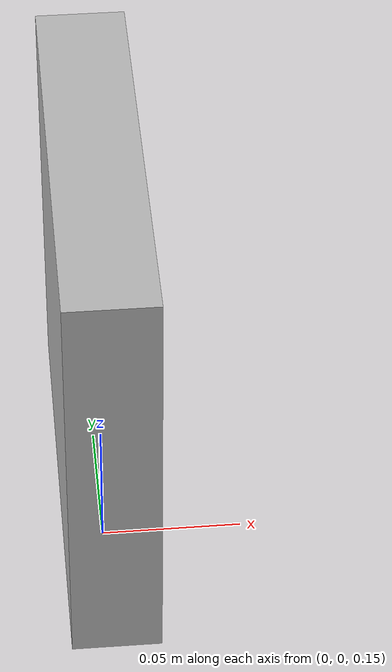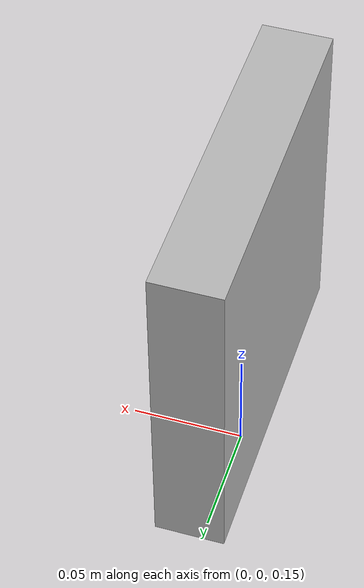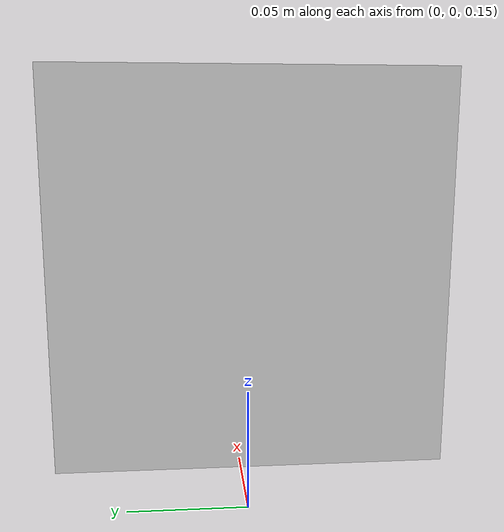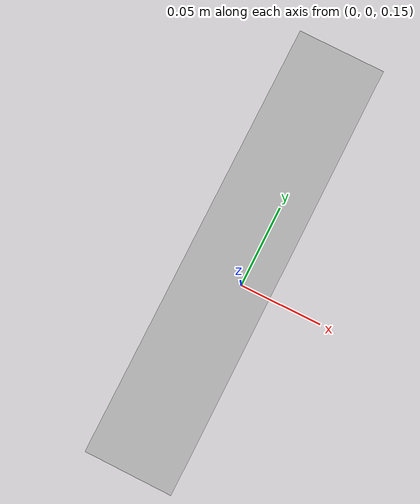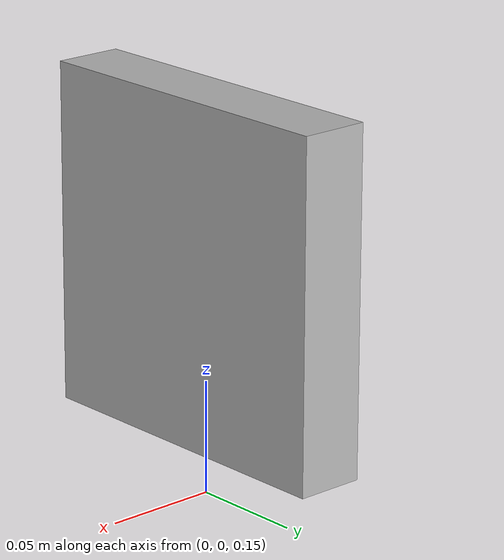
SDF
<?xml version='1.0'?>
<sdf version="1.4">
  <model name="box1">
      <pose>0 0 0.25 0 0 0</pose>
      <static>true</static>
      <link name="link">
        <inertial>
          <mass>0.001</mass>
          <inertia> <!-- inertias are tricky to compute -->
            <!-- http://gazebosim.org/tutorials?tut=inertia&cat=build_robot -->
            <ixx>0.083</ixx>       <!-- for a box: ixx = 0.083 * mass * (y*y + z*z) -->
            <ixy>0.0</ixy>         <!-- for a box: ixy = 0 -->
            <ixz>0.0</ixz>         <!-- for a box: ixz = 0 -->
            <iyy>0.083</iyy>       <!-- for a box: iyy = 0.083 * mass * (x*x + z*z) -->
            <iyz>0.0</iyz>         <!-- for a box: iyz = 0 -->
            <izz>0.083</izz>       <!-- for a box: izz = 0.083 * mass * (x*x + y*y) -->
          </inertia>
        </inertial>
        <collision name="collision">
          <geometry>
            <box>
              <size>0.03 0.15 0.15</size>
            </box>
          </geometry>
        </collision>
        <visual name="visual">
          <geometry>
            <box>
              <size>0.03 0.15 0.15</size>
            </box>
          </geometry>
        </visual>
    </link>
  </model>
</sdf>
